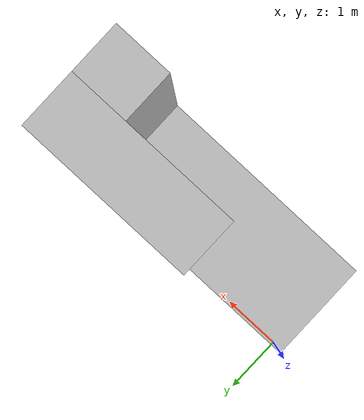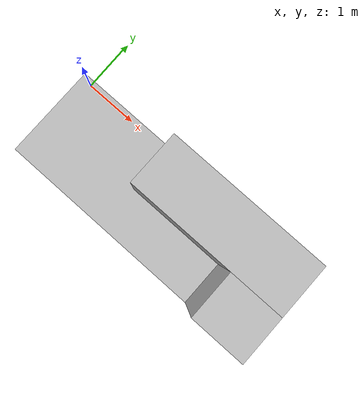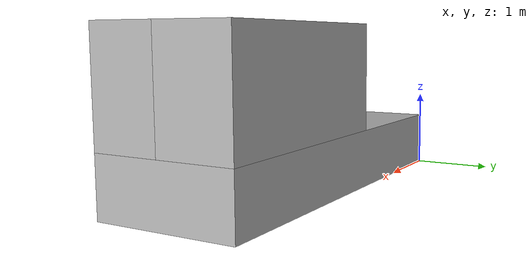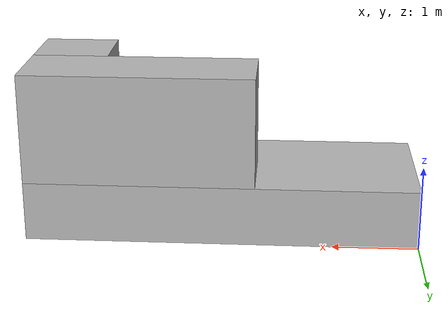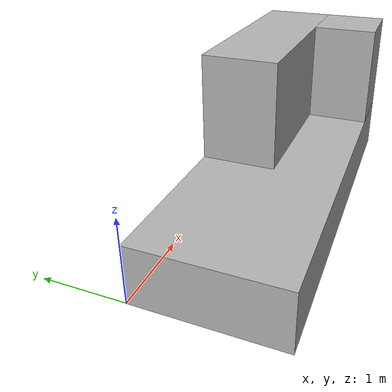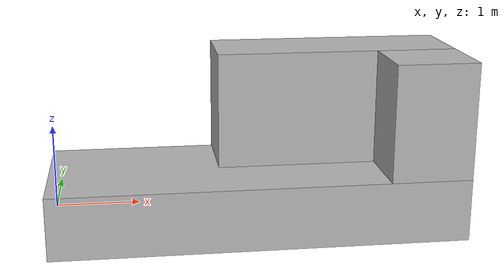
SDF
<?xml version="1.0"?>
<sdf version="1.6">
  <model name="obstacle_10">
    <static>true</static>

    <link name="link_10_1">
      <pose frame=''>2.30 -0.85 0.35 0 -0 0</pose>
      <collision name="body_collision">
        <geometry>
          <box>
            <size>4.60 1.70 0.70</size>
          </box>
        </geometry>
      </collision>

      <visual name="visual_10_1">
	<pose frame=''>0 0 0 0 -0 0</pose>
        <geometry>
          <box>
            <size>4.60 1.70 0.70</size>
          </box>
	</geometry>

	    <material>
		<script>
			<uri>model://obstacle_10/materials/scripts</uri>
			<uri>model://obstacle_10/materials/textures</uri>
			<name>repeated_10</name>
		</script>
	    </material>

      </visual>

    </link>

    <link name="link_10_2">
      <pose frame=''>3.25 -0.45 1.35 0 -0 0</pose>
      <collision name="body_collision">
        <geometry>
          <box>
            <size>2.70 0.90 1.30</size>
          </box>
        </geometry>
      </collision>

      <visual name="visual_10_2">
	<pose frame=''>0 0 0 0 -0 0</pose>
        <geometry>
          <box>
            <size>2.70 0.90 1.30</size>
          </box>
	</geometry>

	    <material>
		<script>
			<uri>model://obstacle_10/materials/scripts</uri>
			<uri>model://obstacle_10/materials/textures</uri>
			<name>repeated_10</name>
		</script>
	    </material>

      </visual>

    </link>

    <link name="link_10_3">
      <pose frame=''>4.15 -1.30 1.35 0 -0 0</pose>
      <collision name="body_collision">
        <geometry>
          <box>
            <size>0.90 0.80 1.30</size>
          </box>
        </geometry>
      </collision>

      <visual name="visual_10_3">
	<pose frame=''>0 0 0 0 -0 0</pose>
        <geometry>
          <box>
            <size>0.90 0.80 1.30</size>
          </box>
	</geometry>

	    <material>
		<script>
			<uri>model://obstacle_10/materials/scripts</uri>
			<uri>model://obstacle_10/materials/textures</uri>
			<name>repeated_10</name>
		</script>
	    </material>

      </visual>

    </link>

  </model>
</sdf>
